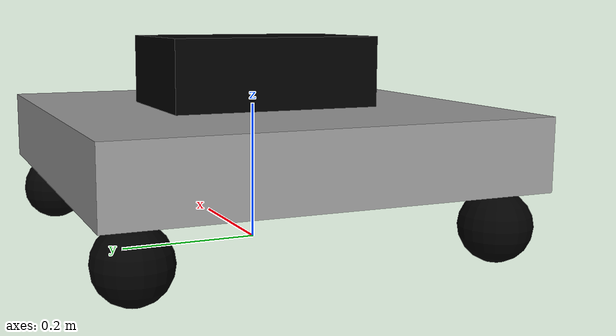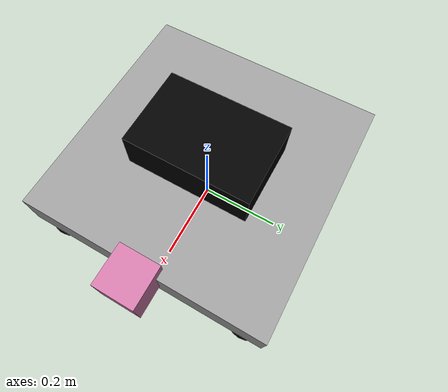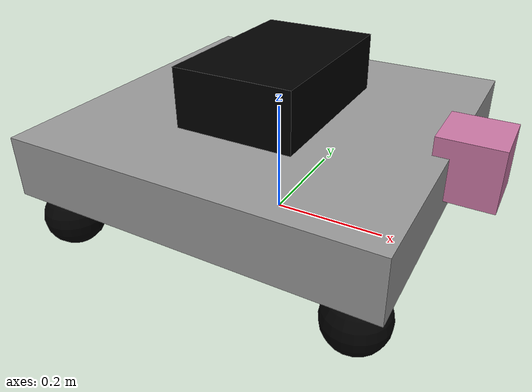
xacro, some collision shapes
<?xml version='1.0'?>
<robot xmlns:sensor="http://playerstage.sourceforge.net/gazebo/xmlschema/#sensor"
       xmlns:controller="http://playerstage.sourceforge.net/gazebo/xmlschema/#controller"
       xmlns:interface="http://playerstage.sourceforge.net/gazebo/xmlschema/#interface"
       xmlns:xacro="http://ros.org/wiki/xacro"
       name="ropod" >

    <xacro:property name="namespace" value="$(arg namespace)"/>
    <xacro:arg name="namespace" default="ropod"/>

    <xacro:property name="base_length" value="0.6" />
    <xacro:property name="base_thickness" value="0.1" />
    <xacro:property name="wheel_radius" value="0.05" />
    <xacro:property name="wheel_mass" value="1.0" />
    <xacro:property name="base_mass" value="8.0" />
    <xacro:property name="inertia_base" value="0.5" />
    <xacro:property name="inertia_wheels" value="0.001" />

    <xacro:include filename="$(find ropod_description)/xacro/hokuyo.xacro" />

    <material name="silver">
        <color rgba="0.6 0.6 0.6 1.0"/>
    </material>

    <material name="black">
        <color rgba="0.0 0.0 0.0 1.0"/>
    </material>

    <xacro:macro name="sphere_inertia" params="mass radius">
        <inertial>
            <mass value="${mass}" />
            <inertia ixx="${(mass*0.4)*(radius*radius)}"
                     iyy="${(mass*0.4)*(radius*radius)}"
                     iyz="0.0" ixy="0.0" ixz="0.0"
                     izz="${(mass*0.4)*(radius*radius)}" />
        </inertial>
    </xacro:macro>

    <xacro:macro name="ropod_wheel" params="name parent *origin mass radius material_name">
        <joint name="${name}_joint" type="fixed">
            <xacro:insert_block name="origin" />
            <parent link="${parent}_link"/>
            <child link="${name}_link"/>
        </joint>
        <link name="${name}_link">
            <visual>
                <geometry>
                    <sphere radius="${radius}" />
                </geometry>
                <material name="${material_name}"/>
            </visual>
            <collision>
                <geometry>
                    <sphere radius="${radius}" />
                </geometry>
            </collision>
            <xacro:sphere_inertia mass="${mass}" radius="${radius}" />
        </link>
        <gazebo reference="${name}_link">
            <material>Gazebo/Black</material>
        </gazebo>
    </xacro:macro>

    <link name='base_link' />

    <joint name='base_body_joint' type='fixed'>
        <origin xyz='0.0 0.0 ${wheel_radius*2 + base_thickness*0.5}' rpy='0 0 0'/>
        <parent link='base_link'/>
        <child link='base_body_link'/>
    </joint>

    <link name='base_body_link'>
        <visual>
            <geometry>
                <box size="${base_length} ${base_length} ${base_thickness}"/>
            </geometry>
            <origin xyz='0.0 0.0 0.0' rpy='0.0 0.0 0.0' />
            <material name="silver"/>
        </visual>
        <collision>
            <geometry>
                <box size="${base_length} ${base_length} ${base_thickness}"/>
            </geometry>
            <origin xyz='0.0 0.0 0.0' rpy='0.0 0.0 0.0' />
        </collision>
        <inertial>
          <mass value="${base_mass}"/>
          <inertia ixx="${inertia_base}" ixy="0.0" ixz="0.0" iyy="${inertia_base}" iyz="0.0" izz="${inertia_base}"/>
        </inertial>
    </link>

    <gazebo reference="base_body_link">
        <material>Gazebo/RustySteel</material>
    </gazebo>

    <!-- WHEELS -->
    <xacro:ropod_wheel name="left_rear_wheel" parent="base_body" mass="${wheel_mass}"
                       radius="${wheel_radius}" material_name="black">
        <origin xyz='${-base_length*0.5 + wheel_radius} ${base_length*0.5 - wheel_radius} ${-base_thickness*0.5 - wheel_radius}' rpy='0 0 0'/>
    </xacro:ropod_wheel>

    <xacro:ropod_wheel name="right_rear_wheel" parent="base_body" mass="${wheel_mass}"
                       radius="${wheel_radius}" material_name="black">
        <origin xyz='${-base_length*0.5 + wheel_radius} ${-base_length*0.5 + wheel_radius} ${-base_thickness*0.5 - wheel_radius}' rpy='0 0 0'/>
    </xacro:ropod_wheel>

    <xacro:ropod_wheel name="left_front_wheel" parent="base_body" mass="${wheel_mass}"
                       radius="${wheel_radius}" material_name="black">
        <origin xyz='${base_length*0.5 - wheel_radius} ${base_length*0.5 - wheel_radius} ${-base_thickness*0.5 - wheel_radius}' rpy='0 0 0'/>
    </xacro:ropod_wheel>

    <xacro:ropod_wheel name="right_front_wheel" parent="base_body" mass="${wheel_mass}"
                       radius="${wheel_radius}" material_name="black">
        <origin xyz='${base_length*0.5 - wheel_radius} ${-base_length*0.5 + wheel_radius} ${-base_thickness*0.5 - wheel_radius}' rpy='0 0 0'/>
    </xacro:ropod_wheel>

    <!-- LASER -->
    <xacro:hokuyo name="front_laser" parent="base_body" namespace="${namespace}"
                  ros_topic="scan" update_rate="20" min_angle="-1.57" max_angle="1.57">
        <origin xyz='0.325 0.0 0.03' rpy='0 0 0'/>
    </xacro:hokuyo>

    <!-- HOLONOMIC DRIVE PLUGIN -->
    <gazebo>
    <plugin name="${namespace}_odometry_plugin" filename="libOdometry_Plugin.so">
            <updateRate>20.0</updateRate>
            <veltopicName>/${namespace}/cmd_vel</veltopicName>
            <odomtopicName>/${namespace}/odom</odomtopicName>
            <robotBaseFrame>/${namespace}/base_link</robotBaseFrame>
            <odomFrame>/${namespace}/odom</odomFrame>
        </plugin>
    </gazebo>

    <!-- DECORATION -->
    <joint name='computer_joint' type='fixed'>
        <origin xyz='0.0 0.0 0.1' rpy='0 0 0'/>
        <parent link='base_body_link'/>
        <child link='computer_link'/>
    </joint>

    <link name='computer_link'>
        <visual>
            <geometry>
                <box size='0.2 0.3 0.1'/>
            </geometry>
            <material name="black"/>
        </visual>
        <collision>
            <geometry>
                <box size='0.2 0.3 0.1'/>
            </geometry>
        </collision>
    </link>

    <gazebo reference="computer_link">
        <material>Gazebo/Black</material>
    </gazebo>

</robot>

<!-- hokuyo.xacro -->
<root xmlns:sensor="http://playerstage.sourceforge.net/gazebo/xmlschema/#sensor"
       xmlns:controller="http://playerstage.sourceforge.net/gazebo/xmlschema/#controller"
       xmlns:interface="http://playerstage.sourceforge.net/gazebo/xmlschema/#interface"
       xmlns:xacro="http://ros.org/wiki/xacro">

    <xacro:macro name="hokuyo" params="name parent *origin namespace ros_topic update_rate min_angle max_angle">
        <joint name="${name}_joint" type="fixed">
            <insert_block name="origin" />
            <parent link="${parent}_link"/>
            <child link="${name}_link"/>
        </joint>
        <link name="${name}_link">
            <collision>
                <origin xyz="0 0 0" rpy="0 0 0"/>
                <geometry>
                    <box size="0.1 0.1 0.1"/>
                </geometry>
            </collision>

            <visual>
                <origin xyz="0 0 0" rpy="0 0 0"/>
                <geometry>
                    <mesh filename="package://ropod_description/meshes/hokuyo.dae"/>
                </geometry>
            </visual>

            <inertial>
                <mass value="1e-5" />
                <origin xyz="0 0 0" rpy="0 0 0"/>
                <inertia ixx="1e-6" ixy="0" ixz="0" iyy="1e-6" iyz="0" izz="1e-6" />
            </inertial>
        </link>

        <gazebo reference="${name}_link">
            <sensor type="ray" name="${name}">
                <pose>0 0 0 0 0 0</pose>
                <visualize>true</visualize>
                <update_rate>${update_rate}</update_rate>
                <ray>
                    <scan>
                        <horizontal>
                            <samples>360</samples>
                            <resolution>1</resolution>
                            <min_angle>${min_angle}</min_angle>
                            <max_angle>${max_angle}</max_angle>
                        </horizontal>
                    </scan>
                    <range>
                        <min>0.1</min>
                        <max>5.0</max>
                        <resolution>0.1</resolution>
                    </range>
                    <noise>
                        <type>gaussian</type>
                        <mean>0.0</mean>
                        <stddev>0.01</stddev>
                    </noise>
                </ray>
                <plugin name="gazebo_ros_head_hokuyo_controller" filename="libgazebo_ros_laser.so">
                    <robotNamespace>${namespace}</robotNamespace>
                    <topicName>${ros_topic}</topicName>
                    <frameName>${name}_link</frameName>
                </plugin>
            </sensor>
        </gazebo>
    </xacro:macro>
</root>
